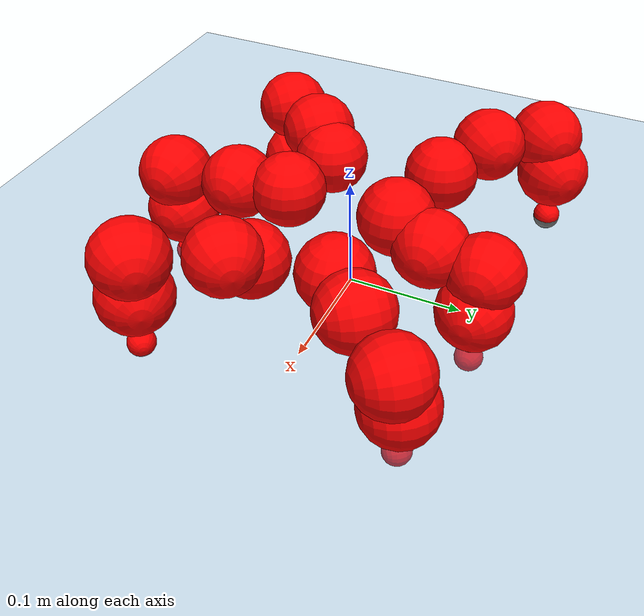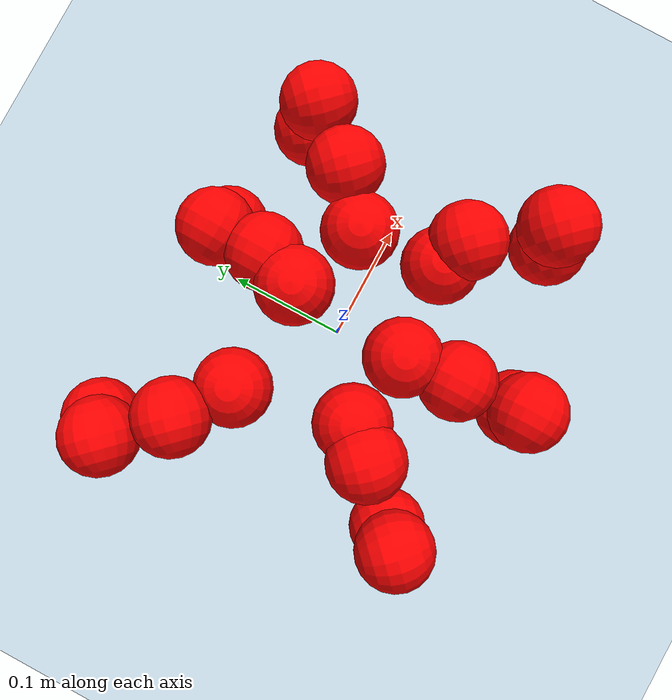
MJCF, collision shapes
<mujoco model="Golem">
  <compiler angle="radian" assetdir="assets" balanceinertia="true" inertiafromgeom="false"/>

  <option timestep="0.005" density="1.2" viscosity="2e-05"/>

  <size nkey="1"/>

  <visual>
    <quality shadowsize="8192"/>
    <map shadowclip="0.5"/>
  </visual>

  <default>
    <default class="/">
      <joint armature="0.01" damping="0.01" frictionloss="0.01"/>
      <geom contype="0" conaffinity="0" group="1" solref="-1000 -80"/>
      <site size="0.01 0.005 0.005" group="5"/>
      <general forcelimited="true" biastype="affine" gainprm="25" biasprm="0 -25 -0.5"/>
      <default class="visual">
        <geom type="mesh" group="2"/>
      </default>
      <default class="collision">
        <geom group="3"/>
      </default>
      <default class="foot">
        <geom size="0.01 0 0" condim="6" group="4" priority="1" solimp="0.015 1 0.01"/>
      </default>
      <default class="reward_collision_sphere">
        <geom group="5" rgba="1 0 0 1"/>
      </default>
    </default>
  </default>

  <asset>
    <texture type="skybox" colorspace="auto" name="//unnamed_texture_0" builtin="gradient" rgb1="0.95 0.95 0.95" rgb2="0.95 0.95 0.95" width="100" height="600"/>
    <texture type="2d" colorspace="auto" name="texplane" builtin="checker" rgb1="0.345 0.575 0.748" rgb2="0.345 0.575 0.748" markrgb="1 1 1" width="512" height="512"/>
    <material name="MatPlane" class="/" texture="texplane" texuniform="true" texrepeat="2 2" specular="0.9"/>
    <mesh name="body" class="/" file="body.stl" scale="0.001 0.001 0.001"/>
    <mesh name="coxa" class="/" file="coxa.stl" scale="0.001 0.001 0.001"/>
    <mesh name="femur" class="/" file="femur.stl" scale="0.001 0.001 0.001"/>
    <mesh name="tibia" class="/" file="tibia.stl" scale="0.001 0.001 0.001"/>
    <mesh name="tarsus" class="/" file="tarsus.stl" scale="0.001 0.001 0.001"/>
  </asset>

  <worldbody>
    <geom name="floor" class="/" size="100 100 0.125" type="plane" group="0" material="MatPlane"/>
    <light name="toplight_shadow" class="/" pos="0 0 5" dir="0.0990148 0.0990148 -0.990148" type="directional" ambient="0.04 0.04 0.04" diffuse="0.55 0.55 0.55" specular="0.12 0.12 0.12"/>
    <light name="toplight_fill" class="/" pos="0 0 5" dir="0.0990148 0.0990148 -0.990148" type="directional" castshadow="false" ambient="0.04 0.04 0.04" diffuse="0.3 0.3 0.3" specular="0.08 0.08 0.08"/>
    <body name="trunk" pos="0.000245513 -0.000306645 -0.0058138" quat="0.999965 -0.00487365 -0.00511246 -0.00449797">
      <inertial pos="-0.00657329 -6.75498e-05 -0.00512606" quat="0.99999 -0.00378909 -0.000500494 0.002193" mass="1.51143" diaginertia="0.00017514 0.000658575 0.0458923"/>
      <joint name="//unnamed_joint_0" type="free"/>
      <geom name="//unnamed_geom_1" class="/" pos="0 0 0.0880803" quat="1 0 0 0" type="mesh" rgba="0.9 0.9 0.9 1" mesh="body"/>
      <site name="imu" class="/" pos="-0.0206473 0.0521843 0.135346" size="0.00797118"/>
      <camera name="track" class="/" pos="0 -1.12804 0" quat="0.707107 0.707107 0 0" mode="trackcom"/>
      <camera name="ego_camera" class="/" pos="0.0586405 0 0.137626" quat="-0.5 -0.5 0.5 0.5"/>
      <body name="coxa_RR" pos="-0.067734 -0.0551846 0.0868034" quat="0.383851 0.00527756 0.00626601 -0.923359">
        <inertial pos="0.00190674 0.000357749 -0.012823" quat="0.998399 -0.0398529 0.0250533 -0.0313466" mass="0.0901286" diaginertia="0.000155207 0.000469821 0.0420116"/>
        <joint name="coxa_joint_RR" class="/" pos="0 0 0" axis="0.015611 0.00601778 -0.99986" range="-2.87856 3.44033" armature="0.0079709" damping="0" frictionloss="0.00374759"/>
        <geom name="//unnamed_geom_2" class="/" type="mesh" rgba="0.2 0.2 0.2 1" mesh="coxa"/>
        <geom name="//unnamed_geom_3" class="reward_collision_sphere" size="0.0318847" pos="-0.0135324 0 0"/>
        <body name="femur_RR" pos="0.016308 0.00177185 0.0130757" quat="0.49833 -0.501387 0.500715 0.499562">
          <inertial pos="0.000598513 -0.0015192 0.00531337" quat="0.999913 -0.00668478 0.00479084 0.0103284" mass="0.098857" diaginertia="0.000165724 0.000501832 0.0537303"/>
          <joint name="femur_joint_RR" class="/" pos="0 0 0" axis="0.0397358 0.0223753 -0.99896" range="-3.43902 3.1027" armature="0.0133774" damping="0.0528125" frictionloss="0.0106983"/>
          <geom name="//unnamed_geom_4" class="/" type="mesh" rgba="0.9 0.9 0.9 1" mesh="femur"/>
          <geom name="//unnamed_geom_5" class="reward_collision_sphere" size="0.0318847"/>
          <body name="tibia_RR" pos="0.0124534 -0.0726019 0.00203271" quat="0.00381077 0.999981 -0.00461567 0.00126176">
            <inertial pos="-0.0134905 -0.0102484 0.000279033" quat="0.999904 0.00974867 -0.00837201 0.00526049" mass="0.0849829" diaginertia="0.000204834 0.000573887 0.0583476"/>
            <joint name="tibia_joint_RR" class="/" pos="0 0 0" axis="-0.0300909 0.0705197 0.997056" range="-3.44786 3.09869" armature="0.0126922" damping="0.060184" frictionloss="0.0097109"/>
            <geom name="//unnamed_geom_6" class="/" type="mesh" rgba="0.2 0.2 0.2 1" mesh="tibia"/>
            <geom name="//unnamed_geom_7" class="reward_collision_sphere" size="0.0318847"/>
            <body name="tarsus_RR" pos="0.0524809 -0.00898441 -0.000418357" quat="0.999992 -0.00333982 0.000984733 0.00171024">
              <inertial pos="0.0260507 0.00370872 -0.0037028" quat="0.49461 0.498967 0.502788 0.503585" mass="0.0916395" diaginertia="0.000144183 0.00056335 0.037332"/>
              <joint name="tarsus_joint_RR" class="/" pos="0 0 0" axis="-0.0662888 0.0152437 0.997684" range="-2.95731 3.22414" armature="0.00987508" damping="0" frictionloss="0.0060427"/>
              <geom name="//unnamed_geom_8" class="/" type="mesh" rgba="0.9 0.9 0.9 1" mesh="tarsus"/>
              <geom name="foot_1" class="foot" size="0.00582669" pos="0.0505211 0 0" quat="0 -0.707107 0 0.707107"/>
              <geom name="//unnamed_geom_10" class="reward_collision_sphere" size="0.0318847"/>
              <geom name="//unnamed_geom_11" class="reward_collision_sphere" size="0.0119568" pos="0.0484912 0 0"/>
              <site name="foot_1" class="foot" pos="0.0505211 0 0" quat="0 -0.707107 0 0.707107" size="0.00797118"/>
            </body>
          </body>
        </body>
      </body>
      <body name="coxa_RM" pos="0.0055544 -0.0685186 0.0889527" quat="0.711311 -0.00397555 0.00230144 -0.702862">
        <inertial pos="-0.00911626 0.0142789 -0.00724218" quat="0.999904 -0.00341048 0.00679157 -0.0116105" mass="0.128911" diaginertia="0.00024098 0.000631836 0.0542172"/>
        <joint name="coxa_joint_RM" class="/" pos="0 0 0" axis="-0.0537998 0.0458526 -0.997498" range="-3.1426 2.86888" armature="0.00212531" damping="0.01791" frictionloss="0.0127712"/>
        <geom name="//unnamed_geom_12" class="/" type="mesh" rgba="0.2 0.2 0.2 1" mesh="coxa"/>
        <geom name="//unnamed_geom_13" class="reward_collision_sphere" size="0.0318847" pos="-0.0135324 0 0"/>
        <body name="femur_RM" pos="0.0322299 0.00383199 -0.00300684" quat="0.500229 -0.499545 0.500079 0.500146">
          <inertial pos="-0.011127 -0.00584633 -0.0034346" quat="0.999583 0.00690626 -0.0187537 -0.0208401" mass="0.0761912" diaginertia="0.00018886 0.000533032 0.0461684"/>
          <joint name="femur_joint_RM" class="/" pos="0 0 0" axis="0.012837 -0.0345803 -0.999319" range="-2.95067 3.17105" armature="0.00968465" damping="0" frictionloss="0.00335108"/>
          <geom name="//unnamed_geom_14" class="/" type="mesh" rgba="0.9 0.9 0.9 1" mesh="femur"/>
          <geom name="//unnamed_geom_15" class="reward_collision_sphere" size="0.0318847"/>
          <body name="tibia_RM" pos="0.00321717 -0.0600729 0.00494192" quat="-0.0012833 0.999998 -0.000907721 -0.0010983">
            <inertial pos="-0.0080219 0.00285485 0.0144784" quat="0.997587 0.0625029 -0.00417983 -0.0299343" mass="0.102304" diaginertia="0.000149416 0.000544757 0.0402484"/>
            <joint name="tibia_joint_RM" class="/" pos="0 0 0" axis="-0.000855876 -0.000599421 0.999999" range="-3.23834 3.30851" armature="0.00274825" damping="0" frictionloss="0.00148323"/>
            <geom name="//unnamed_geom_16" class="/" type="mesh" rgba="0.2 0.2 0.2 1" mesh="tibia"/>
            <geom name="//unnamed_geom_17" class="reward_collision_sphere" size="0.0318847"/>
            <body name="tarsus_RM" pos="0.0375835 -0.00354751 0.000270531" quat="1 -0.00035244 5.64862e-05 0.000215872">
              <inertial pos="0.0152256 -0.000411893 0.00376987" quat="0.52284 0.459496 0.483278 0.530985" mass="0.0944146" diaginertia="0.000164363 0.000508111 0.0561255"/>
              <joint name="tarsus_joint_RM" class="/" pos="0 0 0" axis="0.000873221 0.000816899 0.999999" range="-3.44888 2.94979" armature="0.00162732" damping="0.00573765" frictionloss="0.00712114"/>
              <geom name="//unnamed_geom_18" class="/" type="mesh" rgba="0.9 0.9 0.9 1" mesh="tarsus"/>
              <geom name="foot_2" class="foot" size="0.00345945" pos="0.0505211 0 0" quat="0 -0.707107 0 0.707107"/>
              <geom name="//unnamed_geom_20" class="reward_collision_sphere" size="0.0318847"/>
              <geom name="//unnamed_geom_21" class="reward_collision_sphere" size="0.0119568" pos="0.0484912 0 0"/>
              <site name="foot_2" class="foot" pos="0.0505211 0 0" quat="0 -0.707107 0 0.707107" size="0.00797118"/>
            </body>
          </body>
        </body>
      </body>
      <body name="coxa_RF" pos="0.0941291 -0.0561365 0.0745805" quat="0.923862 -0.000287527 1.0763e-05 -0.382726">
        <inertial pos="0.0123974 0.0169951 -0.0112523" quat="0.998182 -0.0324685 -0.038382 0.0332366" mass="0.109858" diaginertia="0.00015902 0.000534481 0.0492607"/>
        <joint name="coxa_joint_RF" class="/" pos="0 0 0" axis="0.00853728 -0.00946693 -0.999919" stiffness="0.000839802" range="-2.96843 2.83658" armature="0.0123327" damping="0" frictionloss="0.00947962"/>
        <geom name="//unnamed_geom_22" class="/" type="mesh" rgba="0.2 0.2 0.2 1" mesh="coxa"/>
        <geom name="//unnamed_geom_23" class="reward_collision_sphere" size="0.0318847" pos="-0.0135324 0 0"/>
        <body name="femur_RF" pos="0.0100721 0.0110899 0.0169809" quat="0.505738 -0.500241 0.498158 0.495809">
          <inertial pos="-0.000848827 0.0122508 -0.0148872" quat="0.996997 0.0615334 -0.0115129 -0.0455953" mass="0.109551" diaginertia="0.000213921 0.00068706 0.053049"/>
          <joint name="femur_joint_RF" class="/" pos="0 0 0" axis="-0.012504 -0.0349759 -0.99931" range="-3.37446 3.14224" armature="0.00534313" damping="0.0534433" frictionloss="0.0138918"/>
          <geom name="//unnamed_geom_24" class="/" type="mesh" rgba="0.9 0.9 0.9 1" mesh="femur"/>
          <geom name="//unnamed_geom_25" class="reward_collision_sphere" size="0.0318847"/>
          <body name="tibia_RF" pos="-0.00850331 -0.0673364 -0.00910221" quat="-0.00113891 0.999981 -0.0058587 -0.00133589">
            <inertial pos="0.000577895 -0.0100468 0.00773308" quat="0.998324 0.0498174 0.0163389 -0.0245206" mass="0.0982472" diaginertia="0.000180625 0.000611326 0.0569151"/>
            <joint name="tibia_joint_RF" class="/" pos="0 0 0" axis="-0.0706263 -0.00750334 0.997475" range="-3.03147 3.15306" armature="0.0113341" damping="0" frictionloss="0.00804745"/>
            <geom name="//unnamed_geom_26" class="/" type="mesh" rgba="0.2 0.2 0.2 1" mesh="tibia"/>
            <geom name="//unnamed_geom_27" class="reward_collision_sphere" size="0.0318847"/>
            <body name="tarsus_RF" pos="0.0441464 -0.000665544 0.00984555" quat="0.999973 0.00248074 0.00657357 0.00226945">
              <inertial pos="0.0417132 -0.000992947 -0.0166455" quat="0.508798 0.471611 0.47025 0.545502" mass="0.136005" diaginertia="0.000180868 0.000715504 0.0570904"/>
              <joint name="tarsus_joint_RF" class="/" pos="0 0 0" axis="-0.0717313 0.0287644 0.997009" range="-3.45059 3.01952" armature="0.00767261" damping="0" frictionloss="0.00336783"/>
              <geom name="//unnamed_geom_28" class="/" type="mesh" rgba="0.9 0.9 0.9 1" mesh="tarsus"/>
              <geom name="foot_3" class="foot" size="0.0059741" pos="0.0505211 0 0" quat="0 -0.707107 0 0.707107"/>
              <geom name="//unnamed_geom_30" class="reward_collision_sphere" size="0.0318847"/>
              <geom name="//unnamed_geom_31" class="reward_collision_sphere" size="0.0119568" pos="0.0484912 0 0"/>
              <site name="foot_3" class="foot" pos="0.0505211 0 0" quat="0 -0.707107 0 0.707107" size="0.00797118"/>
            </body>
          </body>
        </body>
      </body>
      <body name="coxa_LR" pos="-0.0888091 0.059077 0.0844579" quat="0.386532 0.00584211 -0.00244797 0.922254">
        <inertial pos="-0.0144357 -0.000503414 0.0109204" quat="0.997962 0.00732562 0.0607716 0.0180009" mass="0.0980699" diaginertia="0.000175036 0.00055572 0.0480617"/>
        <joint name="coxa_joint_LR" class="/" pos="0 0 0" axis="-0.0717462 -0.0266695 -0.997066" stiffness="0.0194532" range="-3.03456 3.07778" armature="0.0115347" damping="0.0382158" frictionloss="0.00836628"/>
        <geom name="//unnamed_geom_32" class="/" type="mesh" rgba="0.2 0.2 0.2 1" mesh="coxa"/>
        <geom name="//unnamed_geom_33" class="reward_collision_sphere" size="0.0318847" pos="-0.0135324 0 0"/>
        <body name="femur_LR" pos="0.0359526 0.00908918 0.013429" quat="0.506056 -0.496985 0.497384 0.499522">
          <inertial pos="-0.00754924 0.00379381 -0.000896459" quat="0.999987 -0.00382927 0.000538203 0.00340647" mass="0.110765" diaginertia="0.000192062 0.000588003 0.045395"/>
          <joint name="femur_joint_LR" class="/" pos="0 0 0" axis="-0.00250317 0.00156056 0.999996" range="-3.32486 2.80169" armature="0.00841163" damping="0" frictionloss="0.00145612"/>
          <geom name="//unnamed_geom_34" class="/" type="mesh" rgba="0.9 0.9 0.9 1" mesh="femur"/>
          <geom name="//unnamed_geom_35" class="reward_collision_sphere" size="0.0318847"/>
          <body name="tibia_LR" pos="0.00295364 -0.0570306 -0.000523868" quat="0.00030012 0.999998 -0.00161829 -0.000856259">
            <inertial pos="-0.00640827 0.00515747 -0.00467121" quat="0.999519 -0.0296745 0.000897744 -0.00896794" mass="0.12065" diaginertia="0.000197235 0.000514761 0.0527165"/>
            <joint name="tibia_joint_LR" class="/" pos="0 0 0" axis="-0.00703171 -0.00447666 -0.999965" stiffness="0.0277146" range="-3.27017 3.42477" armature="0.0146575" damping="0" frictionloss="0.011847"/>
            <geom name="//unnamed_geom_36" class="/" type="mesh" rgba="0.2 0.2 0.2 1" mesh="tibia"/>
            <geom name="//unnamed_geom_37" class="reward_collision_sphere" size="0.0318847"/>
            <body name="tarsus_LR" pos="0.0301868 0.00294734 0.0141327" quat="0.999995 -0.000666719 -0.00163419 0.00249037">
              <inertial pos="0.0250907 0.00765176 0.00186498" quat="0.492572 0.504149 0.501127 0.502074" mass="0.0945653" diaginertia="0.000172423 0.000586019 0.0453347"/>
              <joint name="tarsus_joint_LR" class="/" pos="0 0 0" axis="-0.0301719 0.00488637 -0.999533" stiffness="0.0435568" range="-3.44051 3.12626" armature="0.00771695" damping="0.0869356" frictionloss="0.00632536"/>
              <geom name="//unnamed_geom_38" class="/" type="mesh" rgba="0.9 0.9 0.9 1" mesh="tarsus"/>
              <geom name="foot_4" class="foot" size="0.0119078" pos="0.0505211 0 0" quat="0.707107 0 -0.707107 0"/>
              <geom name="//unnamed_geom_40" class="reward_collision_sphere" size="0.0318847"/>
              <geom name="//unnamed_geom_41" class="reward_collision_sphere" size="0.0119568" pos="0.0484912 0 0"/>
              <site name="foot_4" class="foot" pos="0.0505211 0 0" quat="0.707107 0 -0.707107 0" size="0.00797118"/>
            </body>
          </body>
        </body>
      </body>
      <body name="coxa_LM" pos="0.0133536 0.0589306 0.0971592" quat="0.712105 -0.00336762 -0.00307456 0.702058">
        <inertial pos="0.00837673 -0.00025904 -0.0106158" quat="0.999854 -0.00361686 -0.014645 -0.00796703" mass="0.0871878" diaginertia="0.000117346 0.000445293 0.0346324"/>
        <joint name="coxa_joint_LM" class="/" pos="0 0 0" axis="0.000811383 -0.00456326 -0.999989" range="-2.87209 3.24093" armature="0.0131774" damping="0" frictionloss="0.00281596"/>
        <geom name="//unnamed_geom_42" class="/" type="mesh" rgba="0.2 0.2 0.2 1" mesh="coxa"/>
        <geom name="//unnamed_geom_43" class="reward_collision_sphere" size="0.0318847" pos="-0.0135324 0 0"/>
        <body name="femur_LM" pos="0.0211578 -0.0115591 -0.0114783" quat="0.49991 -0.500234 0.499927 0.499929">
          <inertial pos="0.000122423 0.0119172 -0.00024231" quat="0.998609 0.0353475 0.0382695 0.00814318" mass="0.139935" diaginertia="0.000242644 0.000671602 0.0578568"/>
          <joint name="femur_joint_LM" class="/" pos="0 0 0" axis="0.0380435 0.0220529 0.999033" range="-3.25559 3.19954" armature="0.0121828" damping="0" frictionloss="0.00356992"/>
          <geom name="//unnamed_geom_44" class="/" type="mesh" rgba="0.9 0.9 0.9 1" mesh="femur"/>
          <geom name="//unnamed_geom_45" class="reward_collision_sphere" size="0.0318847"/>
          <body name="tibia_LM" pos="0.0088928 -0.0452853 0.00111144" quat="-0.00150889 0.999998 0.00138981 -0.000293358">
            <inertial pos="0.015608 -0.0169571 -0.00342146" quat="1 0.000249005 -0.000392404 -0.000102256" mass="0.0795433" diaginertia="0.000204145 0.000525499 0.0444542"/>
            <joint name="tibia_joint_LM" class="/" pos="0 0 0" axis="0.000789563 0.00129481 -0.999999" range="-3.38465 3.13081" armature="0.00815466" damping="0.00754219" frictionloss="0.0120166"/>
            <geom name="//unnamed_geom_46" class="/" type="mesh" rgba="0.2 0.2 0.2 1" mesh="tibia"/>
            <geom name="//unnamed_geom_47" class="reward_collision_sphere" size="0.0318847"/>
            <body name="tarsus_LM" pos="0.0326472 -0.00240583 0.0101681" quat="0.999999 0.000126537 -0.000810104 0.000706633">
              <inertial pos="0.0349875 0.00453026 -0.000504349" quat="0.501882 0.495721 0.489417 0.512685" mass="0.108795" diaginertia="0.000169467 0.000542348 0.0388811"/>
              <joint name="tarsus_joint_LM" class="/" pos="0 0 0" axis="-0.0487519 0.0443565 -0.997826" stiffness="0.0208297" range="-3.26975 3.3807" armature="0.00823931" damping="0" frictionloss="0.0132514"/>
              <geom name="//unnamed_geom_48" class="/" type="mesh" rgba="0.9 0.9 0.9 1" mesh="tarsus"/>
              <geom name="foot_5" class="foot" size="0.00676075" pos="0.0505211 0 0" quat="0.707107 0 -0.707107 0"/>
              <geom name="//unnamed_geom_50" class="reward_collision_sphere" size="0.0318847"/>
              <geom name="//unnamed_geom_51" class="reward_collision_sphere" size="0.0119568" pos="0.0484912 0 0"/>
              <site name="foot_5" class="foot" pos="0.0505211 0 0" quat="0.707107 0 -0.707107 0" size="0.00797118"/>
            </body>
          </body>
        </body>
      </body>
      <body name="coxa_LF" pos="0.0871127 0.0321005 0.0793197" quat="0.925206 0.00299071 0.000553786 0.379453">
        <inertial pos="0.00358567 0.0120672 0.00438987" quat="0.999572 0.0165217 -0.00587281 0.0234064" mass="0.115429" diaginertia="0.000214327 0.000775824 0.0569918"/>
        <joint name="coxa_joint_LF" class="/" pos="0 0 0" axis="-0.012671 0.00993957 -0.99987" stiffness="0.0104945" range="-2.90702 3.28976" armature="0.00760083" damping="0.0453682" frictionloss="0.00413345"/>
        <geom name="//unnamed_geom_52" class="/" type="mesh" rgba="0.2 0.2 0.2 1" mesh="coxa"/>
        <geom name="//unnamed_geom_53" class="reward_collision_sphere" size="0.0318847" pos="-0.0135324 0 0"/>
        <body name="femur_LF" pos="0.0383276 -0.00271256 0.00589319" quat="0.499424 -0.496613 0.504204 0.499729">
          <inertial pos="-0.000914618 -0.000357885 0.00367978" quat="0.996592 -0.0374074 0.0679353 -0.0280967" mass="0.102659" diaginertia="0.000203853 0.000681339 0.0563299"/>
          <joint name="femur_joint_LF" class="/" pos="0 0 0" axis="-0.0117824 -0.0490395 0.998727" stiffness="0.00816811" range="-3.1805 3.31777" armature="0.00909604" damping="0" frictionloss="0.0147237"/>
          <geom name="//unnamed_geom_54" class="/" type="mesh" rgba="0.9 0.9 0.9 1" mesh="femur"/>
          <geom name="//unnamed_geom_55" class="reward_collision_sphere" size="0.0318847"/>
          <body name="tibia_LF" pos="0.00951421 -0.0584278 0.00640138" quat="-0.00048167 1 -8.19945e-05 0.000222816">
            <inertial pos="-0.00419033 0.00386048 0.00188956" quat="0.998885 0.00519277 0.0174148 -0.0435831" mass="0.0880753" diaginertia="0.000204676 0.000645458 0.0560072"/>
            <joint name="tibia_joint_LF" class="/" pos="0 0 0" axis="-0.0486207 -0.00741334 -0.99879" range="-2.81597 3.09465" armature="0.00363483" damping="0" frictionloss="0.0125292"/>
            <geom name="//unnamed_geom_56" class="/" type="mesh" rgba="0.2 0.2 0.2 1" mesh="tibia"/>
            <geom name="//unnamed_geom_57" class="reward_collision_sphere" size="0.0318847"/>
            <body name="tarsus_LF" pos="0.0419019 -0.00782691 -0.00953927" quat="1 0.000470203 0.000608936 -0.000236328">
              <inertial pos="0.0356521 -0.000421535 -0.0159302" quat="0.500109 0.499853 0.499358 0.500679" mass="0.118261" diaginertia="0.000187682 0.000630938 0.0520217"/>
              <joint name="tarsus_joint_LF" class="/" pos="0 0 0" axis="0.0342819 0.051307 -0.998094" range="-3.16196 2.92971" armature="0.00781972" damping="0.0856185" frictionloss="0.00643508"/>
              <geom name="//unnamed_geom_58" class="/" type="mesh" rgba="0.9 0.9 0.9 1" mesh="tarsus"/>
              <geom name="foot_6" class="foot" size="0.00835324" pos="0.0505211 0 0" quat="0.707107 0 -0.707107 0"/>
              <geom name="//unnamed_geom_60" class="reward_collision_sphere" size="0.0318847"/>
              <geom name="//unnamed_geom_61" class="reward_collision_sphere" size="0.0119568" pos="0.0484912 0 0"/>
              <site name="foot_6" class="foot" pos="0.0505211 0 0" quat="0.707107 0 -0.707107 0" size="0.00797118"/>
            </body>
          </body>
        </body>
      </body>
    </body>
  </worldbody>

  <contact>
    <pair class="/" geom1="floor" geom2="foot_1" name="//unnamed_contact_0"/>
    <pair class="/" geom1="floor" geom2="foot_2" name="//unnamed_contact_1"/>
    <pair class="/" geom1="floor" geom2="foot_3" name="//unnamed_contact_2"/>
    <pair class="/" geom1="floor" geom2="foot_4" name="//unnamed_contact_3"/>
    <pair class="/" geom1="floor" geom2="foot_5" name="//unnamed_contact_4"/>
    <pair class="/" geom1="floor" geom2="foot_6" name="//unnamed_contact_5"/>
  </contact>

  <actuator>
    <general name="coxa_joint_RR" class="/" joint="coxa_joint_RR" forcerange="-3.18269 3.18269" gainprm="27.9925" biasprm="0 -27.9925 -0.55481"/>
    <general name="femur_joint_RR" class="/" joint="femur_joint_RR" forcerange="-3.96449 3.96449" gainprm="27.9925" biasprm="0 -27.9925 -0.55481"/>
    <general name="tibia_joint_RR" class="/" joint="tibia_joint_RR" forcerange="-7.09087 7.09087" gainprm="27.9925" biasprm="0 -27.9925 -0.55481"/>
    <general name="tarsus_joint_RR" class="/" joint="tarsus_joint_RR" forcerange="-4.74029 4.74029" gainprm="27.9925" biasprm="0 -27.9925 -0.55481"/>
    <general name="coxa_joint_RM" class="/" joint="coxa_joint_RM" forcerange="-3.14535 3.14535" gainprm="27.9925" biasprm="0 -27.9925 -0.55481"/>
    <general name="femur_joint_RM" class="/" joint="femur_joint_RM" forcerange="-2.86523 2.86523" gainprm="27.9925" biasprm="0 -27.9925 -0.55481"/>
    <general name="tibia_joint_RM" class="/" joint="tibia_joint_RM" forcerange="-7.72714 7.72714" gainprm="27.9925" biasprm="0 -27.9925 -0.55481"/>
    <general name="tarsus_joint_RM" class="/" joint="tarsus_joint_RM" forcerange="-2.28047 2.28047" gainprm="27.9925" biasprm="0 -27.9925 -0.55481"/>
    <general name="coxa_joint_RF" class="/" joint="coxa_joint_RF" forcerange="-2.59957 2.59957" gainprm="27.9925" biasprm="0 -27.9925 -0.55481"/>
    <general name="femur_joint_RF" class="/" joint="femur_joint_RF" forcerange="-9.05462 9.05462" gainprm="27.9925" biasprm="0 -27.9925 -0.55481"/>
    <general name="tibia_joint_RF" class="/" joint="tibia_joint_RF" forcerange="-7.62997 7.62997" gainprm="27.9925" biasprm="0 -27.9925 -0.55481"/>
    <general name="tarsus_joint_RF" class="/" joint="tarsus_joint_RF" forcerange="-5.33261 5.33261" gainprm="27.9925" biasprm="0 -27.9925 -0.55481"/>
    <general name="coxa_joint_LR" class="/" joint="coxa_joint_LR" forcerange="-3.78596 3.78596" gainprm="27.9925" biasprm="0 -27.9925 -0.55481"/>
    <general name="femur_joint_LR" class="/" joint="femur_joint_LR" forcerange="-8.37126 8.37126" gainprm="27.9925" biasprm="0 -27.9925 -0.55481"/>
    <general name="tibia_joint_LR" class="/" joint="tibia_joint_LR" forcerange="-7.67786 7.67786" gainprm="27.9925" biasprm="0 -27.9925 -0.55481"/>
    <general name="tarsus_joint_LR" class="/" joint="tarsus_joint_LR" forcerange="-6.6418 6.6418" gainprm="27.9925" biasprm="0 -27.9925 -0.55481"/>
    <general name="coxa_joint_LM" class="/" joint="coxa_joint_LM" forcerange="-5.63085 5.63085" gainprm="27.9925" biasprm="0 -27.9925 -0.55481"/>
    <general name="femur_joint_LM" class="/" joint="femur_joint_LM" forcerange="-5.65328 5.65328" gainprm="27.9925" biasprm="0 -27.9925 -0.55481"/>
    <general name="tibia_joint_LM" class="/" joint="tibia_joint_LM" forcerange="-9.33744 9.33744" gainprm="27.9925" biasprm="0 -27.9925 -0.55481"/>
    <general name="tarsus_joint_LM" class="/" joint="tarsus_joint_LM" forcerange="-5.67002 5.67002" gainprm="27.9925" biasprm="0 -27.9925 -0.55481"/>
    <general name="coxa_joint_LF" class="/" joint="coxa_joint_LF" forcerange="-2.8411 2.8411" gainprm="27.9925" biasprm="0 -27.9925 -0.55481"/>
    <general name="femur_joint_LF" class="/" joint="femur_joint_LF" forcerange="-2.76054 2.76054" gainprm="27.9925" biasprm="0 -27.9925 -0.55481"/>
    <general name="tibia_joint_LF" class="/" joint="tibia_joint_LF" forcerange="-6.01582 6.01582" gainprm="27.9925" biasprm="0 -27.9925 -0.55481"/>
    <general name="tarsus_joint_LF" class="/" joint="tarsus_joint_LF" forcerange="-7.19909 7.19909" gainprm="27.9925" biasprm="0 -27.9925 -0.55481"/>
  </actuator>

  <sensor>
    <gyro site="imu" name="imu_angular_velocity"/>
    <velocimeter site="imu" name="imu_linear_velocity"/>
    <framelinvel objtype="site" objname="foot_1" name="foot_1_global_linear_velocity"/>
    <framelinvel objtype="site" objname="foot_2" name="foot_2_global_linear_velocity"/>
    <framelinvel objtype="site" objname="foot_3" name="foot_3_global_linear_velocity"/>
    <framelinvel objtype="site" objname="foot_4" name="foot_4_global_linear_velocity"/>
    <framelinvel objtype="site" objname="foot_5" name="foot_5_global_linear_velocity"/>
    <framelinvel objtype="site" objname="foot_6" name="foot_6_global_linear_velocity"/>
  </sensor>

  <keyframe>
    <key name="home" qpos="0 0 0.1457 1 0 0 0 0 0 0 0 0 0 0 0 0 0 0 0 0 0 0 0 0 0 0 0 0 0 0 0"/>
  </keyframe>
</mujoco>
